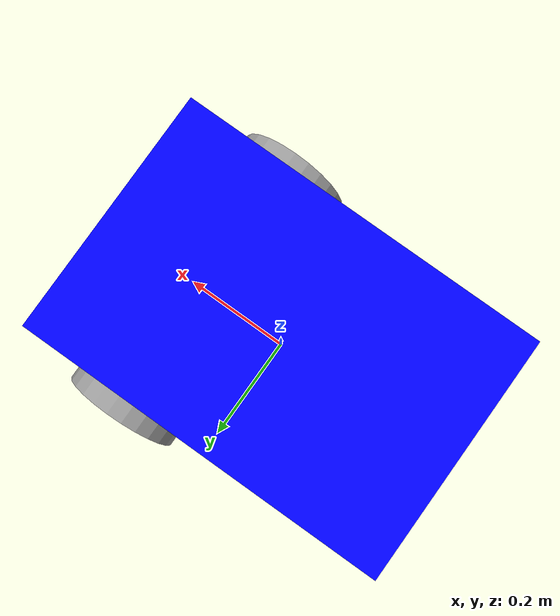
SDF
<sdf version='1.11'>
  <model name='udemy_robot'>
    <link name='base_link'>
      <inertial>
        <pose>-0.018181818181818181 0 0.1863636363636364 0 0 0</pose>
        <mass>5.5</mass>
        <inertia>
          <ixx>0.17739393939393941</ixx>
          <ixy>0</ixy>
          <ixz>-0.013636363636363639</ixz>
          <iyy>0.1122424242424242</iyy>
          <iyz>0</iyz>
          <izz>0.23534848484848481</izz>
        </inertia>
      </inertial>
      <collision name='base_link_fixed_joint_lump__body_collision'>
        <pose>0 0 0.20000000000000001 0 0 0</pose>
        <geometry>
          <box>
            <size>0.59999999999999998 0.40000000000000002 0.20000000000000001</size>
          </box>
        </geometry>
      </collision>
      <collision name='base_link_fixed_joint_lump__caster_wheel_collision_1'>
        <pose>-0.20000000000000001 0 0.050000000000000003 0 0 0</pose>
        <geometry>
          <sphere>
            <radius>0.050000000000000003</radius>
          </sphere>
        </geometry>
      </collision>
      <visual name='base_link_fixed_joint_lump__body_visual'>
        <pose>0 0 0.20000000000000001 0 0 0</pose>
        <geometry>
          <box>
            <size>0.59999999999999998 0.40000000000000002 0.20000000000000001</size>
          </box>
        </geometry>
        <material>
          <diffuse>0 0 1 1</diffuse>
          <ambient>0 0 1 1</ambient>
        </material>
      </visual>
      <visual name='base_link_fixed_joint_lump__caster_wheel_visual_1'>
        <pose>-0.20000000000000001 0 0.050000000000000003 0 0 0</pose>
        <geometry>
          <sphere>
            <radius>0.050000000000000003</radius>
          </sphere>
        </geometry>
        <material>
          <diffuse>0.625 0.625 0.625 1</diffuse>
          <ambient>0.625 0.625 0.625 1</ambient>
        </material>
      </visual>
    </link>
    <joint name='left_wheel_joint' type='revolute'>
      <pose relative_to='base_link'>0.14999999999999999 -0.20000000000000001 0.10000000000000001 0 0 0</pose>
      <parent>base_link</parent>
      <child>left_wheel</child>
      <axis>
        <xyz>0 1 0</xyz>
        <limit>
          <lower>-inf</lower>
          <upper>inf</upper>
        </limit>
        <dynamics>
          <spring_reference>0</spring_reference>
          <spring_stiffness>0</spring_stiffness>
        </dynamics>
      </axis>
    </joint>
    <link name='left_wheel'>
      <pose relative_to='left_wheel_joint'>0 0 0 0 0 0</pose>
      <inertial>
        <pose>0 -0.025000000000000001 0 1.5707963267948959 0 0</pose>
        <mass>1</mass>
        <inertia>
          <ixx>0.0027083333333333339</ixx>
          <ixy>0</ixy>
          <ixz>0</ixz>
          <iyy>0.0027083333333333339</iyy>
          <iyz>0</iyz>
          <izz>0.005000000000000001</izz>
        </inertia>
      </inertial>
      <collision name='left_wheel_collision'>
        <pose>0 -0.025000000000000001 0 1.5707963267948959 0 0</pose>
        <geometry>
          <cylinder>
            <length>0.050000000000000003</length>
            <radius>0.10000000000000001</radius>
          </cylinder>
        </geometry>
      </collision>
      <visual name='left_wheel_visual'>
        <pose>0 -0.025000000000000001 0 1.5707963267948959 0 0</pose>
        <geometry>
          <cylinder>
            <length>0.050000000000000003</length>
            <radius>0.10000000000000001</radius>
          </cylinder>
        </geometry>
        <material>
          <diffuse>0.625 0.625 0.625 1</diffuse>
          <ambient>0.625 0.625 0.625 1</ambient>
        </material>
      </visual>
    </link>
    <joint name='right_wheel_joint' type='revolute'>
      <pose relative_to='base_link'>0.14999999999999999 0.20000000000000001 0.10000000000000001 0 0 0</pose>
      <parent>base_link</parent>
      <child>right_wheel</child>
      <axis>
        <xyz>0 1 0</xyz>
        <limit>
          <lower>-inf</lower>
          <upper>inf</upper>
        </limit>
        <dynamics>
          <spring_reference>0</spring_reference>
          <spring_stiffness>0</spring_stiffness>
        </dynamics>
      </axis>
    </joint>
    <link name='right_wheel'>
      <pose relative_to='right_wheel_joint'>0 0 0 0 0 0</pose>
      <inertial>
        <pose>0 0.025000000000000001 0 -1.5707963267948959 0 0</pose>
        <mass>1</mass>
        <inertia>
          <ixx>0.0027083333333333339</ixx>
          <ixy>0</ixy>
          <ixz>0</ixz>
          <iyy>0.0027083333333333339</iyy>
          <iyz>0</iyz>
          <izz>0.005000000000000001</izz>
        </inertia>
      </inertial>
      <collision name='right_wheel_collision'>
        <pose>0 0.025000000000000001 0 -1.5707963267948959 0 0</pose>
        <geometry>
          <cylinder>
            <length>0.050000000000000003</length>
            <radius>0.10000000000000001</radius>
          </cylinder>
        </geometry>
      </collision>
      <visual name='right_wheel_visual'>
        <pose>0 0.025000000000000001 0 -1.5707963267948959 0 0</pose>
        <geometry>
          <cylinder>
            <length>0.050000000000000003</length>
            <radius>0.10000000000000001</radius>
          </cylinder>
        </geometry>
        <material>
          <diffuse>0.625 0.625 0.625 1</diffuse>
          <ambient>0.625 0.625 0.625 1</ambient>
        </material>
      </visual>
    </link>
    <frame name='caster_wheel_joint' attached_to='body'>
      <pose>-0.20000000000000001 0 -0.050000000000000003 0 0 0</pose>
    </frame>
    <frame name='caster_wheel' attached_to='caster_wheel_joint'>
      <pose>0 0 0 0 0 0</pose>
    </frame>
    <frame name='base_link_to_body' attached_to='base_link'>
      <pose>0 0 0.10000000000000001 0 0 0</pose>
    </frame>
    <frame name='body' attached_to='base_link_to_body'>
      <pose>0 0 0 0 0 0</pose>
    </frame>
  </model>
</sdf>
